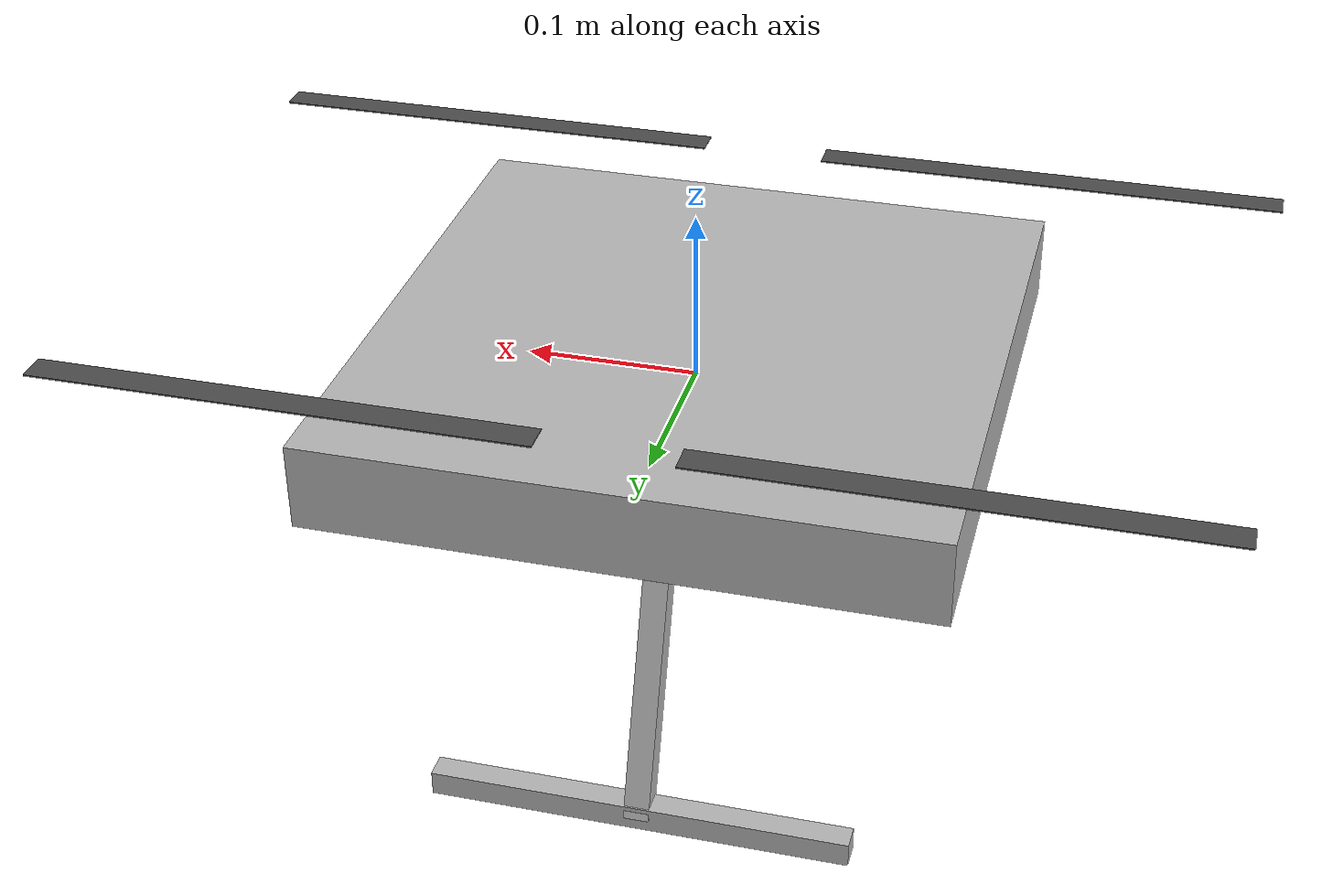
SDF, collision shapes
<?xml version="1.0"?>
<!-- DO NOT EDIT: Generated from nxp_drone.sdf.jinja -->
<sdf version='1.6'>
  <model name='nxp_drone'>
    <pose>0 0 0 0 0 0</pose>
    <self_collide>false</self_collide>
    <static>false</static>
    <link name="fuselage">
      <inertial>
        <mass>2.0</mass>
        <inertia>
          <ixx>0.02166666666666667</ixx>
          <iyy>0.02166666666666667</iyy>
          <izz>0.04000000000000001</izz>
        </inertia>
      </inertial>
      <gravity>true</gravity>
      <self_collide>false</self_collide>
      <velocity_decay/>
      <visual name="fuselage_visual">
        <pose>0 0 .025 0 0 3.141592654</pose>
        <geometry>
          <mesh>
            <scale>1 1 1</scale>
            <uri>model://nxp_drone/meshes/NXP-HGD-CF.dae</uri>
          </mesh>
        </geometry>
      </visual>
      <collision name="fuselage_collision_0">
        <pose>0 0 .007 0 0 0</pose>
        <geometry>
          <box>
            <size>0.35355339059327373 0.35355339059327373 0.05</size>
          </box>
        </geometry>
        <surface>
          <contact>
            <ode>
              <min_depth>0.001</min_depth>
              <max_vel>0</max_vel>
            </ode>
          </contact>
          <friction>
            <ode/>
          </friction>
        </surface>
      </collision>
      <collision name="fuselage_collision_1">
        <pose>0 -0.098 -.123 -0.35 0 0</pose>
        <geometry>
          <box>
            <size>0.015 0.015 0.21</size>
          </box>
        </geometry>
        <surface>
          <contact>
            <ode>
              <min_depth>0.001</min_depth>
              <max_vel>0</max_vel>
            </ode>
          </contact>
          <friction>
            <ode/>
          </friction>
        </surface>
      </collision>
      <collision name="fuselage_collision_2">
        <pose>0 0.098 -.123 0.35 0 0</pose>
        <geometry>
          <box>
            <size>0.015 0.015 0.21</size>
          </box>
        </geometry>
        <surface>
          <contact>
            <ode>
              <min_depth>0.001</min_depth>
              <max_vel>0</max_vel>
            </ode>
          </contact>
          <friction>
            <ode/>
          </friction>
        </surface>
      </collision>
      <collision name="fuselage_collision_3">
        <pose>0 -0.132 -.2195 0 0 0</pose>
        <geometry>
          <box>
            <size>0.25 0.015 0.015</size>
          </box>
        </geometry>
        <surface>
          <contact>
            <ode>
              <min_depth>0.001</min_depth>
              <max_vel>0</max_vel>
            </ode>
          </contact>
          <friction>
            <ode/>
          </friction>
        </surface>
      </collision>
      <collision name="fuselage_collision_4">
        <pose>0 0.132 -.2195 0 0 0</pose>
        <geometry>
          <box>
            <size>0.25 0.015 0.015</size>
          </box>
        </geometry>
        <surface>
          <contact>
            <ode>
              <min_depth>0.001</min_depth>
              <max_vel>0</max_vel>
            </ode>
          </contact>
          <friction>
            <ode/>
          </friction>
        </surface>
      </collision>
    </link>
    <link name='nxp_drone/imu_link'>
      <pose>0 0 0 0 0 0</pose>
      <inertial>
        <pose>0 0 0 0 0 0</pose>
        <mass>0.015</mass>
        <inertia>
          <ixx>1e-05</ixx>
          <ixy>0</ixy>
          <ixz>0</ixz>
          <iyy>1e-05</iyy>
          <iyz>0</iyz>
          <izz>1e-05</izz>
        </inertia>
      </inertial>
    </link>
    <joint name='imu_nxp_drone_joint' type='revolute'>
      <child>nxp_drone/imu_link</child>
      <parent>fuselage</parent>
      <axis>
        <xyz>1 0 0</xyz>
        <limit>
          <lower>0</lower>
          <upper>0</upper>
          <effort>0</effort>
          <velocity>0</velocity>
        </limit>
        <dynamics>
          <spring_reference>0</spring_reference>
          <spring_stiffness>0</spring_stiffness>
        </dynamics>
        <use_parent_model_frame>1</use_parent_model_frame>
      </axis>
    </joint>

    <!--Rotor 0 -->
    <link name="rotor_0">
      <gravity>true</gravity>
      <self_collide>false</self_collide>
      <velocity_decay/>
      <pose>0.1767766952966369 -0.17677669529663687 0.06 0 0 0</pose>
      <inertial>
          <mass>0.016076923076923075</mass>
          <inertia>
            <ixx>3.8464910483993325e-07</ixx>
            <iyy>2.6115851691700804e-05</iyy>
            <izz>2.649858234714004e-05</izz>
          </inertia>
        </inertial>
      <visual name="rotor_0_visual">
        <pose>-0.022 -0.14638461538461536 -0.02 0 0 0</pose>
        <geometry>
          <mesh>
            <scale>0.8461538461538461 0.8461538461538461 0.8461538461538461</scale>
            <uri>model://nxp_drone/meshes/1345_prop_ccw.stl</uri>
          </mesh>
        </geometry>
        <material>
          <script>
            <name>Gazebo/DarkGrey</name>
            <uri>file://media/materials/scripts/gazebo.material</uri>
          </script>
        </material>
      </visual>
      <visual name="rotor_0_visual_motor_top">
        <pose>-.025 -.025 -0.042 0 0 0</pose>
        <geometry>
          <mesh>
            <scale>1 1 1</scale>
            <uri>model://nxp_drone/meshes/5010Top.stl</uri>
          </mesh>
        </geometry>
        <material>
          <script>
            <name>Gazebo/Grey</name>
            <uri>file://media/materials/scripts/gazebo.material</uri>
          </script>
        </material>
      </visual>
      <visual name="rotor_0_visual_motor_bottom">
        <pose>0 0 -0.024 0 0 0</pose>
        <geometry>
          <cylinder>
            <radius>0.025</radius>
            <length>0.01</length>
          </cylinder>
        </geometry>
        <material>
          <script>
            <name>Gazebo/Black</name>
            <uri>file://media/materials/scripts/gazebo.material</uri>
          </script>
        </material>
      </visual>
      <collision name="rotor_0_collision">
        <pose>0 0 0 0 0 0 </pose>
        <geometry>
          <box>
            <size>0.2792307692307692 0.016923076923076923 0.0008461538461538462</size>
          </box>
        </geometry>
        <surface>
          <contact>
            <ode>
              <min_depth>0.001</min_depth>
              <max_vel>0</max_vel>
            </ode>
          </contact>
          <friction>
            <ode/>
          </friction>
        </surface>
      </collision>
    </link>
    <joint name="rotor_0_joint" type="revolute">
      <parent>fuselage</parent>
      <child>rotor_0</child>
      <axis>
        <xyz>0 0 1</xyz>
        <limit>
          <lower>-1e+16</lower>
          <upper>1e+16</upper>
        </limit>
        <dynamics>
          <spring_reference>0</spring_reference>
          <spring_stiffness>0</spring_stiffness>
        </dynamics>
        <use_parent_model_frame>1</use_parent_model_frame>
      </axis>
    </joint>
    <plugin name='rotor_0_motor_model' filename='libgazebo_motor_model.so'>
      <robotNamespace></robotNamespace>
      <jointName>rotor_0_joint</jointName>
      <linkName>rotor_0</linkName>
      <turningDirection>ccw</turningDirection>
      <timeConstantUp>0.0125</timeConstantUp>
      <timeConstantDown>0.025</timeConstantDown>
      <maxRotVelocity>1100</maxRotVelocity>
      <motorConstant>8.54858e-06</motorConstant>
      <momentConstant>0.06</momentConstant>
      <commandSubTopic>/gazebo/command/motor_speed</commandSubTopic>
      <motorNumber>0</motorNumber>
      <rotorDragCoefficient>0.000806428</rotorDragCoefficient>
      <rollingMomentCoefficient>1e-06</rollingMomentCoefficient>
      <motorSpeedPubTopic>/motor_speed/0</motorSpeedPubTopic>
      <rotorVelocitySlowdownSim>10</rotorVelocitySlowdownSim>
    </plugin>

    <!--Rotor 1 -->
    <link name="rotor_1">
      <gravity>true</gravity>
      <self_collide>false</self_collide>
      <velocity_decay/>
      <pose>-0.17677669529663687 0.1767766952966369 0.06 0 0 0</pose>
      <inertial>
          <mass>0.016076923076923075</mass>
          <inertia>
            <ixx>3.8464910483993325e-07</ixx>
            <iyy>2.6115851691700804e-05</iyy>
            <izz>2.649858234714004e-05</izz>
          </inertia>
        </inertial>
      <visual name="rotor_1_visual">
        <pose>-0.022 -0.14638461538461536 -0.02 0 0 0</pose>
        <geometry>
          <mesh>
            <scale>0.8461538461538461 0.8461538461538461 0.8461538461538461</scale>
            <uri>model://nxp_drone/meshes/1345_prop_ccw.stl</uri>
          </mesh>
        </geometry>
        <material>
          <script>
            <name>Gazebo/DarkGrey</name>
            <uri>file://media/materials/scripts/gazebo.material</uri>
          </script>
        </material>
      </visual>
      <visual name="rotor_1_visual_motor_top">
        <pose>-.025 -.025 -0.042 0 0 0</pose>
        <geometry>
          <mesh>
            <scale>1 1 1</scale>
            <uri>model://nxp_drone/meshes/5010Top.stl</uri>
          </mesh>
        </geometry>
        <material>
          <script>
            <name>Gazebo/Grey</name>
            <uri>file://media/materials/scripts/gazebo.material</uri>
          </script>
        </material>
      </visual>
      <visual name="rotor_1_visual_motor_bottom">
        <pose>0 0 -0.024 0 0 0</pose>
        <geometry>
          <cylinder>
            <radius>0.025</radius>
            <length>0.01</length>
          </cylinder>
        </geometry>
        <material>
          <script>
            <name>Gazebo/Black</name>
            <uri>file://media/materials/scripts/gazebo.material</uri>
          </script>
        </material>
      </visual>
      <collision name="rotor_1_collision">
        <pose>0 0 0 0 0 0 </pose>
        <geometry>
          <box>
            <size>0.2792307692307692 0.016923076923076923 0.0008461538461538462</size>
          </box>
        </geometry>
        <surface>
          <contact>
            <ode>
              <min_depth>0.001</min_depth>
              <max_vel>0</max_vel>
            </ode>
          </contact>
          <friction>
            <ode/>
          </friction>
        </surface>
      </collision>
    </link>
    <joint name="rotor_1_joint" type="revolute">
      <parent>fuselage</parent>
      <child>rotor_1</child>
      <axis>
        <xyz>0 0 1</xyz>
        <limit>
          <lower>-1e+16</lower>
          <upper>1e+16</upper>
        </limit>
        <dynamics>
          <spring_reference>0</spring_reference>
          <spring_stiffness>0</spring_stiffness>
        </dynamics>
        <use_parent_model_frame>1</use_parent_model_frame>
      </axis>
    </joint>
    <plugin name='rotor_1_motor_model' filename='libgazebo_motor_model.so'>
      <robotNamespace></robotNamespace>
      <jointName>rotor_1_joint</jointName>
      <linkName>rotor_1</linkName>
      <turningDirection>ccw</turningDirection>
      <timeConstantUp>0.0125</timeConstantUp>
      <timeConstantDown>0.025</timeConstantDown>
      <maxRotVelocity>1100</maxRotVelocity>
      <motorConstant>8.54858e-06</motorConstant>
      <momentConstant>0.06</momentConstant>
      <commandSubTopic>/gazebo/command/motor_speed</commandSubTopic>
      <motorNumber>1</motorNumber>
      <rotorDragCoefficient>0.000806428</rotorDragCoefficient>
      <rollingMomentCoefficient>1e-06</rollingMomentCoefficient>
      <motorSpeedPubTopic>/motor_speed/1</motorSpeedPubTopic>
      <rotorVelocitySlowdownSim>10</rotorVelocitySlowdownSim>
    </plugin>
    <plugin name='rotor_1_tachometer' filename='libgazebo_ros_tachometer.so'>
      <robotNamespace></robotNamespace>
      <jointName>rotor_1_joint</jointName>
      <turningDirection>ccw</turningDirection>
      <motorSpeedPubTopic>/motor_0</motorSpeedPubTopic>
      <rotorVelocitySlowdownSim>10</rotorVelocitySlowdownSim>
    </plugin>

    <!--Rotor 2 -->
    <link name="rotor_2">
      <gravity>true</gravity>
      <self_collide>false</self_collide>
      <velocity_decay/>
      <pose>0.1767766952966369 0.17677669529663687 0.06 0 0 0</pose>
      <inertial>
          <mass>0.016076923076923075</mass>
          <inertia>
            <ixx>3.8464910483993325e-07</ixx>
            <iyy>2.6115851691700804e-05</iyy>
            <izz>2.649858234714004e-05</izz>
          </inertia>
        </inertial>
      <visual name="rotor_2_visual">
        <pose>-0.022 -0.14638461538461536 -0.02 0 0 0</pose>
        <geometry>
          <mesh>
            <scale>0.8461538461538461 0.8461538461538461 0.8461538461538461</scale>
            <uri>model://nxp_drone/meshes/1345_prop_cw.stl</uri>
          </mesh>
        </geometry>
        <material>
          <script>
            <name>Gazebo/DarkGrey</name>
            <uri>file://media/materials/scripts/gazebo.material</uri>
          </script>
        </material>
      </visual>
      <visual name="rotor_2_visual_motor_top">
        <pose>-.025 -.025 -0.042 0 0 0</pose>
        <geometry>
          <mesh>
            <scale>1 1 1</scale>
            <uri>model://nxp_drone/meshes/5010Top.stl</uri>
          </mesh>
        </geometry>
        <material>
          <script>
            <name>Gazebo/Grey</name>
            <uri>file://media/materials/scripts/gazebo.material</uri>
          </script>
        </material>
      </visual>
      <visual name="rotor_2_visual_motor_bottom">
        <pose>0 0 -0.024 0 0 0</pose>
        <geometry>
          <cylinder>
            <radius>0.025</radius>
            <length>0.01</length>
          </cylinder>
        </geometry>
        <material>
          <script>
            <name>Gazebo/Black</name>
            <uri>file://media/materials/scripts/gazebo.material</uri>
          </script>
        </material>
      </visual>
      <collision name="rotor_2_collision">
        <pose>0 0 0 0 0 0 </pose>
        <geometry>
          <box>
            <size>0.2792307692307692 0.016923076923076923 0.0008461538461538462</size>
          </box>
        </geometry>
        <surface>
          <contact>
            <ode>
              <min_depth>0.001</min_depth>
              <max_vel>0</max_vel>
            </ode>
          </contact>
          <friction>
            <ode/>
          </friction>
        </surface>
      </collision>
    </link>
    <joint name="rotor_2_joint" type="revolute">
      <parent>fuselage</parent>
      <child>rotor_2</child>
      <axis>
        <xyz>0 0 1</xyz>
        <limit>
          <lower>-1e+16</lower>
          <upper>1e+16</upper>
        </limit>
        <dynamics>
          <spring_reference>0</spring_reference>
          <spring_stiffness>0</spring_stiffness>
        </dynamics>
        <use_parent_model_frame>1</use_parent_model_frame>
      </axis>
    </joint>
    <plugin name='rotor_2_motor_model' filename='libgazebo_motor_model.so'>
      <robotNamespace></robotNamespace>
      <jointName>rotor_2_joint</jointName>
      <linkName>rotor_2</linkName>
      <turningDirection>cw</turningDirection>
      <timeConstantUp>0.0125</timeConstantUp>
      <timeConstantDown>0.025</timeConstantDown>
      <maxRotVelocity>1100</maxRotVelocity>
      <motorConstant>8.54858e-06</motorConstant>
      <momentConstant>0.06</momentConstant>
      <commandSubTopic>/gazebo/command/motor_speed</commandSubTopic>
      <motorNumber>2</motorNumber>
      <rotorDragCoefficient>0.000806428</rotorDragCoefficient>
      <rollingMomentCoefficient>1e-06</rollingMomentCoefficient>
      <motorSpeedPubTopic>/motor_speed/2</motorSpeedPubTopic>
      <rotorVelocitySlowdownSim>10</rotorVelocitySlowdownSim>
    </plugin>
    <plugin name='rotor_2_tachometer' filename='libgazebo_ros_tachometer.so'>
      <robotNamespace></robotNamespace>
      <jointName>rotor_2_joint</jointName>
      <turningDirection>ccw</turningDirection>
      <motorSpeedPubTopic>/motor_2</motorSpeedPubTopic>
      <rotorVelocitySlowdownSim>10</rotorVelocitySlowdownSim>
    </plugin>

    <!--Rotor 3 -->
    <link name="rotor_3">
      <gravity>true</gravity>
      <self_collide>false</self_collide>
      <velocity_decay/>
      <pose>-0.17677669529663687 -0.1767766952966369 0.06 0 0 0</pose>
      <inertial>
          <mass>0.016076923076923075</mass>
          <inertia>
            <ixx>3.8464910483993325e-07</ixx>
            <iyy>2.6115851691700804e-05</iyy>
            <izz>2.649858234714004e-05</izz>
          </inertia>
        </inertial>
      <visual name="rotor_3_visual">
        <pose>-0.022 -0.14638461538461536 -0.02 0 0 0</pose>
        <geometry>
          <mesh>
            <scale>0.8461538461538461 0.8461538461538461 0.8461538461538461</scale>
            <uri>model://nxp_drone/meshes/1345_prop_cw.stl</uri>
          </mesh>
        </geometry>
        <material>
          <script>
            <name>Gazebo/DarkGrey</name>
            <uri>file://media/materials/scripts/gazebo.material</uri>
          </script>
        </material>
      </visual>
      <visual name="rotor_3_visual_motor_top">
        <pose>-.025 -.025 -0.042 0 0 0</pose>
        <geometry>
          <mesh>
            <scale>1 1 1</scale>
            <uri>model://nxp_drone/meshes/5010Top.stl</uri>
          </mesh>
        </geometry>
        <material>
          <script>
            <name>Gazebo/Grey</name>
            <uri>file://media/materials/scripts/gazebo.material</uri>
          </script>
        </material>
      </visual>
      <visual name="rotor_3_visual_motor_bottom">
        <pose>0 0 -0.024 0 0 0</pose>
        <geometry>
          <cylinder>
            <radius>0.025</radius>
            <length>0.01</length>
          </cylinder>
        </geometry>
        <material>
          <script>
            <name>Gazebo/Black</name>
            <uri>file://media/materials/scripts/gazebo.material</uri>
          </script>
        </material>
      </visual>
      <collision name="rotor_3_collision">
        <pose>0 0 0 0 0 0 </pose>
        <geometry>
          <box>
            <size>0.2792307692307692 0.016923076923076923 0.0008461538461538462</size>
          </box>
        </geometry>
        <surface>
          <contact>
            <ode>
              <min_depth>0.001</min_depth>
              <max_vel>0</max_vel>
            </ode>
          </contact>
          <friction>
            <ode/>
          </friction>
        </surface>
      </collision>
    </link>
    <joint name="rotor_3_joint" type="revolute">
      <parent>fuselage</parent>
      <child>rotor_3</child>
      <axis>
        <xyz>0 0 1</xyz>
        <limit>
          <lower>-1e+16</lower>
          <upper>1e+16</upper>
        </limit>
        <dynamics>
          <spring_reference>0</spring_reference>
          <spring_stiffness>0</spring_stiffness>
        </dynamics>
        <use_parent_model_frame>1</use_parent_model_frame>
      </axis>
    </joint>
    <plugin name='rotor_3_motor_model' filename='libgazebo_motor_model.so'>
      <robotNamespace></robotNamespace>
      <jointName>rotor_3_joint</jointName>
      <linkName>rotor_3</linkName>
      <turningDirection>cw</turningDirection>
      <timeConstantUp>0.0125</timeConstantUp>
      <timeConstantDown>0.025</timeConstantDown>
      <maxRotVelocity>1100</maxRotVelocity>
      <motorConstant>8.54858e-06</motorConstant>
      <momentConstant>0.06</momentConstant>
      <commandSubTopic>/gazebo/command/motor_speed</commandSubTopic>
      <motorNumber>3</motorNumber>
      <rotorDragCoefficient>0.000806428</rotorDragCoefficient>
      <rollingMomentCoefficient>1e-06</rollingMomentCoefficient>
      <motorSpeedPubTopic>/motor_speed/3</motorSpeedPubTopic>
      <rotorVelocitySlowdownSim>10</rotorVelocitySlowdownSim>
    </plugin>

    <plugin name='groundtruth_plugin' filename='libgazebo_groundtruth_plugin.so'>
      <robotNamespace/>
    </plugin>
    <plugin name='magnetometer_plugin' filename='libgazebo_magnetometer_plugin.so'>
      <robotNamespace/>
      <pubRate>100</pubRate>
      <noiseDensity>0.0004</noiseDensity>
      <randomWalk>6.4e-06</randomWalk>
      <biasCorrelationTime>600</biasCorrelationTime>
      <magTopic>/mag</magTopic>
    </plugin>
    <plugin name='barometer_plugin' filename='libgazebo_barometer_plugin.so'>
      <robotNamespace/>
      <pubRate>50</pubRate>
      <baroTopic>/baro</baroTopic>
      <baroDriftPaPerSec>0</baroDriftPaPerSec>
    </plugin>
    <plugin name="vision_plugin" filename="libgazebo_vision_plugin.so">
        <robotNamespace></robotNamespace>
        <pubRate>30</pubRate>
        <randomWalk>0</randomWalk>
        <noiseDensity>0</noiseDensity>
        <corellationTime>0.01</corellationTime>
    </plugin>
    <plugin name='mavlink_interface' filename='libgazebo_mavlink_interface.so'>
      <robotNamespace/>
      <imuSubTopic>/imu</imuSubTopic>
      <magSubTopic>/mag</magSubTopic>
      <baroSubTopic>/baro</baroSubTopic>
      <mavlink_addr>INADDR_ANY</mavlink_addr>
      <mavlink_udp_port>14560</mavlink_udp_port>
      <mavlink_tcp_port>4560</mavlink_tcp_port>
      <serialEnabled>0</serialEnabled>
      <serialDevice>/dev/ttyACM0</serialDevice>
      <baudRate>921600</baudRate>
      <qgc_addr>INADDR_ANY</qgc_addr>
      <qgc_udp_port>14550</qgc_udp_port>
      <sdk_addr>INADDR_ANY</sdk_addr>
      <sdk_udp_port>14540</sdk_udp_port>
      <hil_mode>0</hil_mode>
      <hil_state_level>0</hil_state_level>
      <send_vision_estimation>1</send_vision_estimation>
      <send_odometry>0</send_odometry>
      <enable_lockstep>1</enable_lockstep>
      <use_tcp>1</use_tcp>
      <motorSpeedCommandPubTopic>/gazebo/command/motor_speed</motorSpeedCommandPubTopic>
      <control_channels>
        <channel name='rotor1'>
          <input_index>0</input_index>
          <input_offset>0</input_offset>
          <input_scaling>1000</input_scaling>
          <zero_position_disarmed>0</zero_position_disarmed>
          <zero_position_armed>100</zero_position_armed>
          <joint_control_type>velocity</joint_control_type>
        </channel>
        <channel name='rotor2'>
          <input_index>1</input_index>
          <input_offset>0</input_offset>
          <input_scaling>1000</input_scaling>
          <zero_position_disarmed>0</zero_position_disarmed>
          <zero_position_armed>100</zero_position_armed>
          <joint_control_type>velocity</joint_control_type>
        </channel>
        <channel name='rotor3'>
          <input_index>2</input_index>
          <input_offset>0</input_offset>
          <input_scaling>1000</input_scaling>
          <zero_position_disarmed>0</zero_position_disarmed>
          <zero_position_armed>100</zero_position_armed>
          <joint_control_type>velocity</joint_control_type>
        </channel>
        <channel name='rotor4'>
          <input_index>3</input_index>
          <input_offset>0</input_offset>
          <input_scaling>1000</input_scaling>
          <zero_position_disarmed>0</zero_position_disarmed>
          <zero_position_armed>100</zero_position_armed>
          <joint_control_type>velocity</joint_control_type>
        </channel>
      </control_channels>
    </plugin>
    <static>0</static>
    <plugin name='gazebo_imu_plugin' filename='libgazebo_imu_plugin.so'>
      <robotNamespace/>
      <linkName>nxp_drone/imu_link</linkName>
      <imuTopic>/imu</imuTopic>
      <gyroscopeNoiseDensity>0.00018665</gyroscopeNoiseDensity>
      <gyroscopeRandomWalk>3.8785e-05</gyroscopeRandomWalk>
      <gyroscopeBiasCorrelationTime>1000.0</gyroscopeBiasCorrelationTime>
      <gyroscopeTurnOnBiasSigma>0.0087</gyroscopeTurnOnBiasSigma>
      <accelerometerNoiseDensity>0.00186</accelerometerNoiseDensity>
      <accelerometerRandomWalk>0.006</accelerometerRandomWalk>
      <accelerometerBiasCorrelationTime>300.0</accelerometerBiasCorrelationTime>
      <accelerometerTurnOnBiasSigma>0.196</accelerometerTurnOnBiasSigma>
    </plugin>
  </model>
</sdf>
